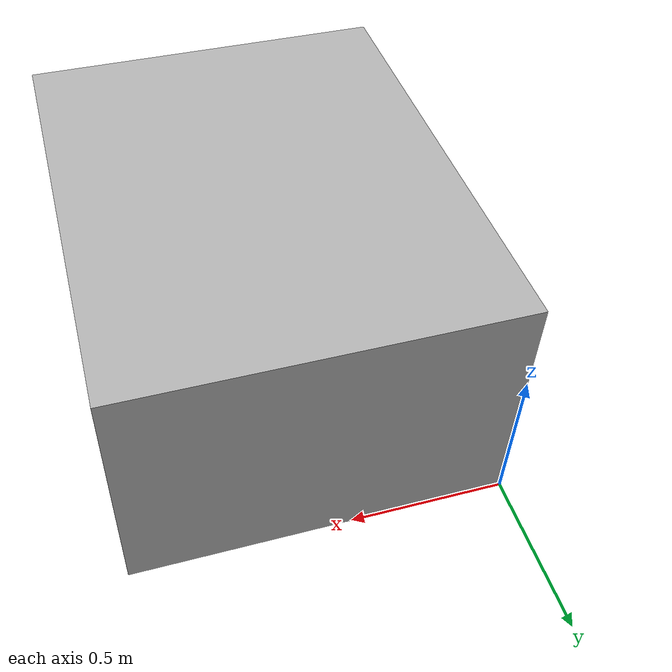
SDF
<?xml version="1.0"?>
<sdf version="1.6">
  <model name="obstacle_02">
    <static>true</static>

    <link name="link_02">
      <pose frame=''>0.60 -0.75 0.40 0 -0 0</pose>
      <collision name="body_collision">
        <geometry>
          <box>
            <size>1.20 1.50 0.80</size>
          </box>
        </geometry>
      </collision>

      <visual name="visual_02">
	<pose frame=''>0 0 0 0 -0 0</pose>
        <geometry>
          <box>
            <size>1.20 1.50 0.80</size>
          </box>
	</geometry>

	    <material>
		<script>
			<uri>model://obstacle_02/materials/scripts</uri>
			<uri>model://obstacle_02/materials/textures</uri>
			<name>repeated_02</name>
		</script>
	    </material>

      </visual>

    </link>

  </model>
</sdf>
